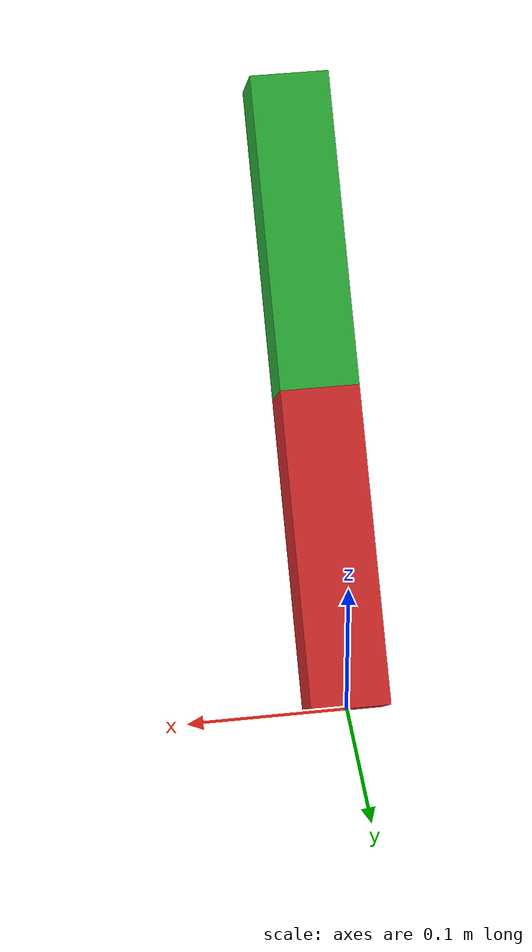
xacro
<?xml version="1.0"?>
<robot xmlns:xacro="http://www.ros.org/wiki/xacro" name="simple_robot">

    <!-- Parameters -->
    <xacro:property name="width"          value="0.05"/>
    <xacro:property name="length"         value="0.05"/>
    <xacro:property name="height"         value="0.2"/>
    <xacro:property name="mass"           value="2.0"/>
    <xacro:property name="element_prefix" value="element"/>
    <xacro:arg      name="is_gravity"     default="true"/>

    <!-- Macro for inertia matrix for rectangular box around its center -->
    <xacro:macro name="box_inertial" params="m x y z dx dy dz">
        <inertial>
            <mass  value="${m}"/>
            <origin xyz="${x} ${y} ${z}" rpy="0 0 0"/>
            <inertia ixx="${m/12*(dy*dy + dz*dz)}" ixy="0.0" ixz="0.0"
                     iyy="${m/12*(dx*dx + dz*dz)}" iyz="0.0"
                     izz="${m/12*(dx*dx + dy*dy)}"/>
        </inertial>
    </xacro:macro>

    <!-- Macro for a single element of box geometry -->
    <xacro:macro name="elem" params="name m dx dy dz is_gravity:=true colour:=White">
        <!-- Link without joint -->
        <link name="${name}">
            <visual>
                <geometry>
                    <box size="${dx} ${dy} ${dz}"/>
                </geometry>
                <origin xyz="0 0 ${-dz/2}" rpy="0 0 0"/>
            </visual>
            <collision>
                <geometry>
                    <box size="${dx} ${dy} ${dz}"/>
                </geometry>
                <origin xyz="0 0 ${-dz/2}" rpy="0 0 0"/>
            </collision>
            <xacro:box_inertial m="${mass}"
                                x="0"       y="0"  z="${-dz/2}"
                                dx="${dx}" dy="${dy}"    dz="${dz}"/>
        </link>

        <!-- Gazebo simulation settings -->
        <gazebo reference="${name}">
            <selfCollide>true</selfCollide>
            <static>false</static>
            <turnGravityOff>${not is_gravity}</turnGravityOff>
            <material>Gazebo/${colour}</material>
        </gazebo>
    </xacro:macro>

    <!-- Fixed world frame -->
    <link name="world"/>

    <!-- Links -->
    <xacro:elem name="${element_prefix}_1" m="${mass}" dx="${width}" dy="${length}" dz="${height}" is_gravity="$(arg is_gravity)" colour="Red"/>
    <xacro:elem name="${element_prefix}_2" m="${mass}" dx="${width}" dy="${length}" dz="${height}" is_gravity="$(arg is_gravity)" colour="Green"/>

    <!-- Joints -->
    <!-- 1 to world -->
    <joint name="world_joint" type="fixed">
        <parent link="world"/>
        <child  link="${element_prefix}_1"/>
        <origin xyz="0 ${-cos(pi/4)*height} ${sin(pi/4)*height}" rpy="${pi/4} 0 0"/>
    </joint>
    <!-- 2 to 1 -->
    <joint name="joint_1" type="continuous">
        <axis xyz="1 0 0"/>
        <parent link="${element_prefix}_1"/>
        <child  link="${element_prefix}_2"/>
        <origin xyz="0 0 0" rpy="${pi} 0 0"/>
    </joint>
    <transmission name="joint_1_transmission">
        <type>transmission_interface/SimpleTransmission</type>
        <joint name="joint_1">
            <hardwareInterface>hardware_interface/EffortJointInterface</hardwareInterface>
        </joint>
        <actuator name="joint_1_motor">
            <mechanicalReduction>1</mechanicalReduction>
        </actuator>
    </transmission>
    <!-- TODO: Add a loop that allows use to add multiple of these-->

    <gazebo>
      <plugin name="gazebo_ros_control" filename="libgazebo_ros_control.so">
        <robotNamespace>/simple_robot</robotNamespace>
      </plugin>
    </gazebo>

</robot>
